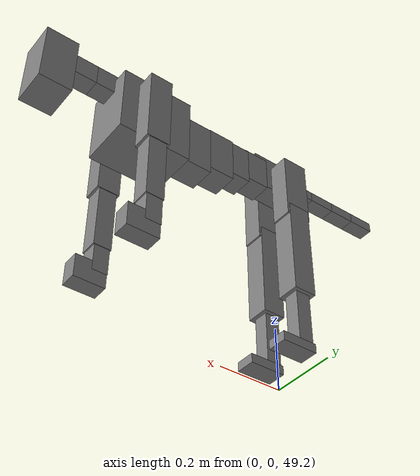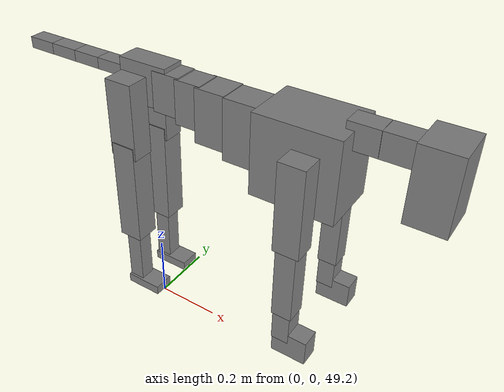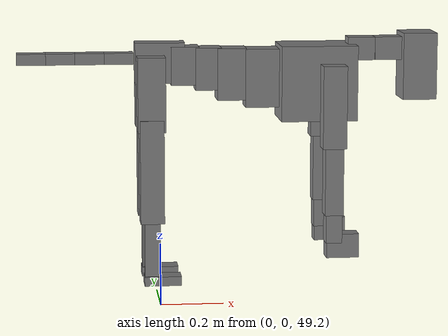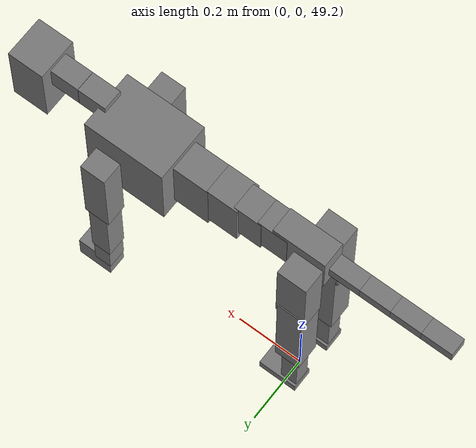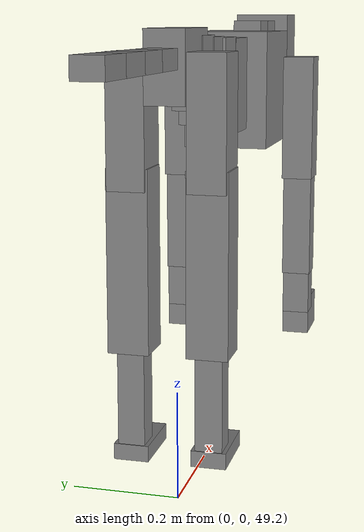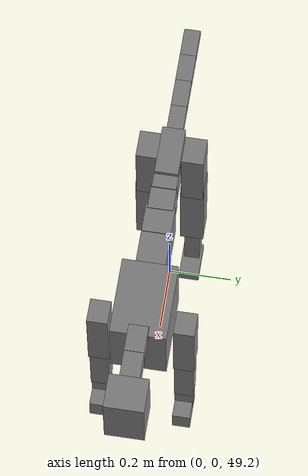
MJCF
<mujoco model="dog">

    <default>
        <joint armature="0.02" stiffness="1" damping="0.2" limited="true"/>
        <geom condim="3" friction="1 0.05 0.05" margin="0.01"/>
        <motor ctrllimited="true" ctrlrange="-1.0 1.0" forcelimited="true" gear="50"/>
    </default>

    <compiler inertiafromgeom="true" angle="radian"/>

    <option timestep="0.016" iterations="50" tolerance="1e-10" solver="Newton" jacobian="dense" cone="pyramidal"/>

    <size nconmax="20000" njmax="60000" nstack="5000000"/>
    <visual>
        <map force="0.1" zfar="30"/>
        <rgba haze="0.15 0.25 0.35 1"/>
        <quality shadowsize="2048"/>
        <global offwidth="800" offheight="800"/>
    </visual>

    <asset>
        <texture type="skybox" builtin="gradient" rgb1="0.3 0.5 0.7" rgb2="0 0 0" width="512" height="512"/>
        <texture name="texplane" type="2d" builtin="checker" rgb1=".2 .3 .4" rgb2=".1 0.15 0.2" width="512" height="512"
                 mark="cross" markrgb=".8 .8 .8"/>
        <texture name="texgeom" type="cube" builtin="flat" mark="cross" width="127" height="1278" rgb1="0.8 0.6 0.4"
                 rgb2="0.8 0.6 0.4" markrgb="1 1 1" random="0.01"/>

        <material name="matplane" reflectance="0.3" texture="texplane" texrepeat="1 1" texuniform="true"/>
        <material name="matgeom" texture="texgeom" texuniform="true" rgba="0.8 0.6 .4 1"/>
    </asset>

    <worldbody>
        <geom name="floor" pos="0 0 0" size="0 0 .25" type="plane" material="matplane" condim="3"/>

        <light directional="false" diffuse=".2 .2 .2" specular="0 0 0" pos="0 0 5" dir="0 0 -1" castshadow="false"/>
        <light mode="targetbodycom" target="torso" directional="false" diffuse=".8 .8 .8" specular="0.3 0.3 0.3"
               pos="0 0 4.0" dir="0 0 -1"/>

        <body name="root" pos="0 0 50">
            <freejoint name="root_1"/>
            <geom type="box" pos="0 0 -0.02" size="0.0774  0.0358  0.063" density="2030"/>

            <body name="spine1" pos="0.054 0 0">
                <joint name="spine1_y" axis="0 1 0" range="0 0.7" limited="true"/>
                <geom type="box" pos="0.02375 0 -0.03" size="0.04375  0.0375  0.05985" density="2030"/>

                <body name="spine2" pos="0.0612 0 0">
                    <joint name="spine2_y" axis="0 1 0" range="-0.15 0.15" limited="true"/>
                    <geom type="box" pos="0.03555  0  -0.04" size="0.04055  0.039  0.06615" density="2030"/>

                    <body name="spine3" pos="0.0730 0 0">
                        <joint name="spine3_y" axis="0 1 0" range="-0.15 0.15" limited="true"/>
                        <geom type="box" pos="0.03555  0  -0.057" size="0.04555  0.0445  0.081" density="2030"/>

                        <body name="spine4" pos="0.0780 0 0">
                            <joint name="spine4_y" axis="0 1 0" range="-0.15 0.15" limited="true"/>
                            <geom type="box" pos="0.05265  0  -0.07" size="0.05265  0.045  0.09135" density="2030"/>

                            <body name="torso" pos="0.1082 0 0">
                                <joint name="torso_y" axis="0 1 0" range="-0.15 0.15" limited="true"/>
                                <geom type="box" pos="0.11925  0  -0.085" size="0.11925  0.085  0.11745"
                                      density="2030"/>

                                <body name="neck1" pos="0.2160  0   0.0180">
                                    <joint name="neck1_y" axis="0 1 0" range="-1.2  -1" limited="true"/>
                                    <geom type="box" pos="0.0423  0  0" size="0.0423  0.03  0.036" density="2325"/>

                                    <body name="neck2" pos="0.0853  0  0">
                                        <joint name="neck2_y" axis="0 1 0" range="0.1  0" limited="true"/>
                                        <geom type="box" pos="0.0423  0  0" size="0.0423  0.03  0.036" density="2325"/>

                                        <body name="head" pos="0.0853  0  0">
                                            <joint name="head_y" axis="0 1 0" range="-0.3  -0.2" limited="true"/>
                                            <geom type="box" pos="0.0531  0  -0.055" size="0.0531  0.06  0.1044"
                                                  density="4030"/>

                                        </body>
                                    </body>
                                </body>

                                <body name="front_shoulder" pos="0.156  0   -0.0480">
                                    <joint name="front_shoulder_y" axis="0 1 0" range="-1 1.5" limited="true"/>
                                    <geom type="box" pos="0 0.13 -0.1020" size="0.0370  0.0316  0.1286" density="1158"/>
                                    <geom type="box" pos="0 -0.13 -0.1020" size="0.0370  0.0316  0.1286"
                                          density="1158"/>

                                    <body name="front_elbow" pos="0  0  -0.2039">
                                        <joint name="front_elbow_y" axis="0 1 0" range="-2 0" limited="true"/>
                                        <geom type="box" pos="0 0.13 -0.1178" size="0.0287  0.0293  0.1178"
                                              density="1081"/>
                                        <geom type="box" pos="0 -0.13 -0.1178" size="0.0287  0.0293  0.1178"
                                              density="1081"/>

                                        <body name="front_wrist" pos="0  0  -0.2356">
                                            <joint name="front_wrist_y" axis="0 1 0" range="-0.2 0" limited="true"/>
                                            <geom type="box" pos="0 0.13 -0.0371" size="0.0250  0.0277  0.0502"
                                                  density="1664"/>
                                            <geom type="box" pos="0 -0.13 -0.0371" size="0.0250  0.0277  0.0502"
                                                  density="1664"/>

                                            <body name="front_finger_end" pos="0  0  -0.0742">
                                                <joint name="front_finger_y" axis="0 1 0" range="-0.4 1"
                                                       limited="true"/>
                                                <geom type="box" pos="0.0276  0.13  -0.0224"
                                                      size="0.0505  0.0276  0.0374" density="1515"/>
                                                <geom type="box" pos="0.0276  -0.13  -0.0224"
                                                      size="0.0505  0.0276  0.0374" density="1515"/>

                                            </body>

                                        </body>
                                    </body>
                                </body>

                            </body>
                        </body>
                    </body>
                </body>
            </body>

            <body name="back_hip" pos="-0.03 0 -0.018">
                <joint name="back_hip_y" axis="0 1 0" range="-1.5 0.3" limited="true"/>
                <geom type="box" pos="0 0.07 -0.0938" size="0.0431  0.0338  0.1166" density="1154"/>
                <geom type="box" pos="0 -0.07 -0.0938" size="0.0431  0.0338  0.1166" density="1154"/>

                <body name="back_knee" pos="0  0  -0.1876">
                    <joint name="back_knee_y" axis="0 1 0" range="0 2.8" limited="true"/>
                    <geom type="box" pos="0 0.07 -0.1464" size="0.0373  0.0368  0.1619" density="1227"/>
                    <geom type="box" pos="0 -0.07 -0.1464" size="0.0373  0.0368  0.1619" density="1227"/>

                    <body name="back_ankle" pos="0  0  -0.2928">
                        <joint name="back_ankle_y" axis="0 1 0" range="-2.2 0" limited="true"/>
                        <geom type="box" pos="0 0.07 -0.1000" size="0.0242  0.0242  0.1112" density="1284"/>
                        <geom type="box" pos="0 -0.07 -0.1000" size="0.0242  0.0242  0.1112" density="1284"/>

                        <body name="back_toe_end" pos="0  0  -0.2000">
                            <joint name="back_toe_y" axis="0 1 0" range="-0.4 1" limited="true"/>
                            <geom type="box" pos="0.0315  0.07  0.0005" size="0.0577  0.0315  0.0145" density="1515"/>
                            <geom type="box" pos="0.0315  -0.07  0.0005" size="0.0577  0.0315  0.0145" density="1515"/>

                        </body>
                    </body>
                </body>
            </body>

            <body name="tail1" pos="-0.074 0 -0.006">
                <joint name="tail1_y" axis="0 1 0" range="-0.2 0.2" limited="true"/>
                <geom type="box" pos="-0.0536  0  0" size="0.045  0.025  0.0175" density="1587"/>

                <body name="tail2" pos="-0.09 0 0">
                    <joint name="tail2_y" axis="0 1 0" range="-0.2 0.2" limited="true"/>
                    <geom type="box" pos="-0.0536  0  0" size="0.045  0.025  0.0175" density="1587"/>

                    <body name="tail3" pos="-0.09 0 0">
                        <joint name="tail3_y" axis="0 1 0" range="-0.2 0.2" limited="true"/>
                        <geom type="box" pos="-0.0536  0  0" size="0.045  0.025  0.0175" density="1587"/>

                        <body name="tail4" pos="-0.09 0 0">
                            <joint name="tail4_y" axis="0 1 0" range="-0.2 0.2" limited="true"/>
                            <geom type="box" pos="-0.0536  0  0" size="0.045  0.025  0.0175" density="1587"/>

                        </body>
                    </body>
                </body>
            </body>
        </body>
    </worldbody>

    <actuator>
        <motor joint="spine1_y" forcerange="-150 150     "/>
        <motor joint="spine2_y" forcerange="-150 150     "/>
        <motor joint="spine3_y" forcerange="-150 150     "/>
        <motor joint="spine4_y" forcerange="-150 150     "/>
        <motor joint="torso_y" forcerange="-150 150     "/>
        <motor joint="neck1_y" forcerange="-100 100       "/>
        <motor joint="neck2_y" forcerange="-100 100       "/>
        <motor joint="head_y" forcerange="-150 150       "/>
        <motor joint="front_shoulder_y" forcerange="-122.95 187.71"/>
        <motor joint="front_elbow_y" forcerange="-151.75 161.34"/>
        <motor joint="front_wrist_y" forcerange="-90.07 131.84"/>
        <motor joint="front_finger_y" forcerange="-21.88 85.09"/>
        <motor joint="back_hip_y" forcerange="-296.74 354.44"/>
        <motor joint="back_knee_y" forcerange="-376.72 358.04"/>
        <motor joint="back_angle_y" forcerange="-223.56 64.42"/>
        <motor joint="back_toe_y" forcerange="-77.38 94.57"/>
        <motor joint="tail1_y" forcerange="-50 50     "/>
        <motor joint="tail2_y" forcerange="-50 50     "/>
        <motor joint="tail3_y" forcerange="-50 50     "/>
        <motor joint="tail4_y" forcerange="-50 50     "/>
    </actuator>
</mujoco>
